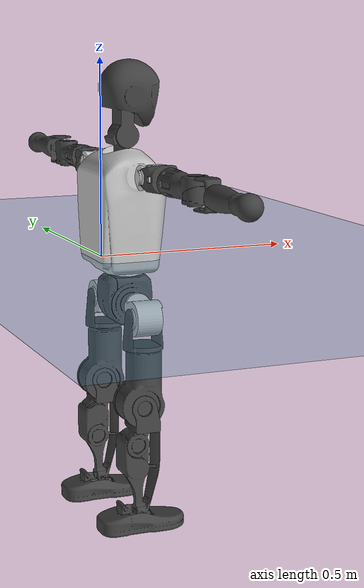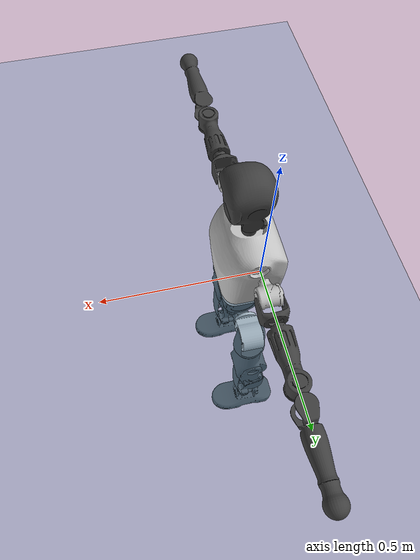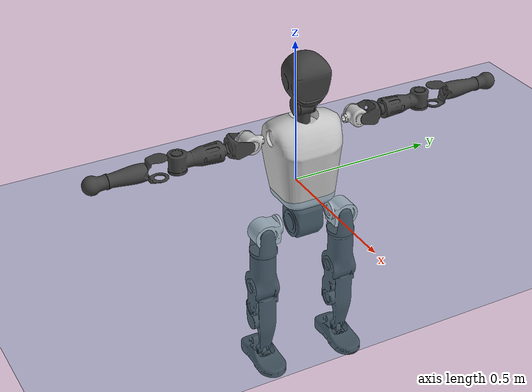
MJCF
<mujoco model="T1">
  <compiler angle="radian" assetdir="assets" balanceinertia="true" inertiafromgeom="false"/>

  <option timestep="0.005" density="1.2" viscosity="2e-05"/>

  <size nkey="1"/>

  <visual>
    <quality shadowsize="8192"/>
    <map shadowclip="0.5"/>
  </visual>

  <default>
    <default class="/">
      <joint armature="0.01" damping="0.01" frictionloss="0.1"/>
      <geom contype="0" conaffinity="0" group="1" solref="-1000 -80"/>
      <site size="0.01 0.005 0.005" group="5"/>
      <general forcelimited="true" biastype="affine" gainprm="25" biasprm="0 -25 -0.6"/>
      <default class="t1">
        <geom rgba="0.25 0.25 0.25 1"/>
        <default class="visual">
          <geom type="mesh" group="2"/>
        </default>
        <default class="collision">
          <geom group="3"/>
        </default>
        <default class="foot">
          <geom size="0.1115 0.05 0.015" type="box" condim="6" group="4" priority="1" solimp="0.015 1 0.015"/>
        </default>
        <default class="reward_collision_sphere">
          <geom group="5" rgba="1 0 0 1"/>
        </default>
      </default>
    </default>
  </default>

  <asset>
    <texture type="skybox" colorspace="auto" name="//unnamed_texture_0" builtin="gradient" rgb1="0.95 0.95 0.95" rgb2="0.95 0.95 0.95" width="100" height="600"/>
    <texture type="2d" colorspace="auto" name="texplane" builtin="checker" rgb1="0.345 0.575 0.748" rgb2="0.345 0.575 0.748" markrgb="1 1 1" width="512" height="512"/>
    <material name="MatPlane" class="/" texture="texplane" texuniform="true" texrepeat="2 2" specular="0.9"/>
    <mesh name="Trunk" class="/" file="Trunk.stl"/>
    <mesh name="H1" class="/" file="H1.stl"/>
    <mesh name="H2" class="/" file="H2.stl"/>
    <mesh name="AL1" class="/" file="AL1.stl"/>
    <mesh name="AL2" class="/" file="AL2.stl"/>
    <mesh name="AL3" class="/" file="AL3.stl"/>
    <mesh name="left_hand_link" class="/" file="left_hand_link.stl"/>
    <mesh name="AR1" class="/" file="AR1.stl"/>
    <mesh name="AR2" class="/" file="AR2.stl"/>
    <mesh name="AR3" class="/" file="AR3.stl"/>
    <mesh name="right_hand_link" class="/" file="right_hand_link.stl"/>
    <mesh name="Waist" class="/" file="Waist.stl"/>
    <mesh name="Hip_Pitch_Left" class="/" file="Hip_Pitch_Left.stl"/>
    <mesh name="Hip_Roll_Left" class="/" file="Hip_Roll_Left.stl"/>
    <mesh name="Hip_Yaw_Left" class="/" file="Hip_Yaw_Left.stl"/>
    <mesh name="Shank_Left" class="/" file="Shank_Left.stl"/>
    <mesh name="Ankle_Cross_Left" class="/" file="Ankle_Cross_Left.stl"/>
    <mesh name="left_foot_link" class="/" file="left_foot_link.stl"/>
    <mesh name="Hip_Pitch_Right" class="/" file="Hip_Pitch_Right.stl"/>
    <mesh name="Hip_Roll_Right" class="/" file="Hip_Roll_Right.stl"/>
    <mesh name="Hip_Yaw_Right" class="/" file="Hip_Yaw_Right.stl"/>
    <mesh name="Shank_Right" class="/" file="Shank_Right.stl"/>
    <mesh name="Ankle_Cross_Right" class="/" file="Ankle_Cross_Right.stl"/>
    <mesh name="right_foot_link" class="/" file="right_foot_link.stl"/>
  </asset>

  <worldbody>
    <geom name="floor" class="/" size="100 100 0.125" type="plane" group="0" material="MatPlane"/>
    <light name="toplight_shadow" class="/" pos="0 0 5" dir="0.0990148 0.0990148 -0.990148" type="directional" ambient="0.04 0.04 0.04" diffuse="0.55 0.55 0.55" specular="0.12 0.12 0.12"/>
    <light name="toplight_fill" class="/" pos="0 0 5" dir="0.0990148 0.0990148 -0.990148" type="directional" castshadow="false" ambient="0.04 0.04 0.04" diffuse="0.3 0.3 0.3" specular="0.08 0.08 0.08"/>
    <body name="trunk" childclass="t1" pos="0.000391792 -0.00256232 -0.00262824" quat="1 0.000104824 0.000299429 -8.37478e-05">
      <inertial pos="0.0537573 -0.00350101 0.105009" quat="0.999961 0.000610157 -0.00765622 -0.00430879" mass="16.2074" diaginertia="0.073147 0.412875 0.0565209"/>
      <joint name="//unnamed_joint_0" type="free" armature="0" damping="0" frictionloss="0"/>
      <geom name="//unnamed_geom_1" class="visual" rgba="0.76 0.76 0.76 1" mesh="Trunk"/>
      <geom name="//unnamed_geom_2" class="collision" size="0.0845676 0.112757 0.169135" pos="0.0577049 0 0.121832" type="box"/>
      <geom name="//unnamed_geom_3" class="reward_collision_sphere" size="0.12967" pos="0.0577049 0 0.101527"/>
      <geom name="//unnamed_geom_4" class="reward_collision_sphere" size="0.0169135" pos="0.0577049 0.119483 0"/>
      <geom name="//unnamed_geom_5" class="reward_collision_sphere" size="0.0169135" pos="0.0577049 -0.119483 0"/>
      <geom name="//unnamed_geom_6" class="reward_collision_sphere" size="0.0169135" pos="0.0577049 0.150408 0.182749"/>
      <geom name="//unnamed_geom_7" class="reward_collision_sphere" size="0.0169135" pos="0.0577049 -0.150408 0.182749"/>
      <site name="imu" pos="-0.00790377 -0.0106227 0.0129153" size="0.0112757"/>
      <camera name="track" pos="0 -2.81137 0" quat="0.707107 0.707107 0 0" mode="trackcom"/>
      <camera name="ego_camera" pos="0.117333 0 0.426414" quat="-0.5 -0.5 0.5 0.5"/>
      <body name="H1" pos="0.0568608 0.0010052 0.245074" quat="1 -8.23139e-05 -0.000112973 0.000112309">
        <inertial pos="-0.00065111 -0.00559436 0.0561841" quat="0.759927 -0.0142229 0.00475636 0.649835" mass="0.635514" diaginertia="0.000204854 0.00121663 0.000159239"/>
        <joint name="AAHead_yaw" pos="0 0 0" axis="0.0113255 0.00287917 0.999932" range="-1.57337 1.60866" armature="0.0111108" damping="0.0123311" frictionloss="0.135437"/>
        <geom name="//unnamed_geom_8" class="visual" mesh="H1"/>
        <body name="H2" pos="0.00164986 -0.00271913 0.0633898" quat="1 -1.34281e-05 2.84771e-05 2.54081e-05">
          <inertial pos="0.0040683 0.0038186 0.0975379" quat="0.987287 0.110375 -0.0725724 -0.0884059" mass="0.903909" diaginertia="0.00167357 0.0105901 0.00185857"/>
          <joint name="Head_pitch" pos="0 0 0" axis="0.0027117 -0.999936 0.0110179" range="-1.22084 0.354311" armature="0.0117607" damping="0.00769395" frictionloss="0.107192"/>
          <geom name="//unnamed_geom_9" class="visual" mesh="H2"/>
          <geom name="//unnamed_geom_10" class="collision" size="0.0902054" pos="0.00961749 0 0.11168"/>
          <geom name="//unnamed_geom_11" class="reward_collision_sphere" size="0.101481" pos="0.019235 0 0.101527"/>
        </body>
      </body>
      <body name="AL1" pos="0.0549606 0.150376 0.220688" quat="1 -0.000785747 7.8336e-05 -0.000161432">
        <inertial pos="-0.00104083 0.0609086 -0.00255888" quat="0.510751 0.487117 -0.507938 0.493811" mass="0.757225" diaginertia="0.00115325 0.00686733 0.000315665"/>
        <joint name="Left_Shoulder_Pitch" pos="0 0 0" axis="-0.00144815 0.999998 -0.00108572" range="-3.25425 1.20191" armature="0.0111468" damping="0" frictionloss="0.110204"/>
        <geom name="//unnamed_geom_12" class="visual" rgba="0.76 0.76 0.76 1" mesh="AL1"/>
        <body name="AL2" pos="0.00147835 0.0653316 -0.00086285" quat="1 4.48418e-05 0.000201429 0.00027584">
          <inertial pos="0.0016747 0.0500556 0.00160528" quat="0.484139 0.504374 -0.482717 0.527448" mass="0.237289" diaginertia="0.000329475 0.00191155 0.000187227"/>
          <joint name="Left_Shoulder_Roll" pos="0 0 0" axis="-0.999993 0.00068725 0.00372934" stiffness="0.000386668" range="-1.56595 1.7414" armature="0.012948" damping="0.0107693" frictionloss="0.0995499"/>
          <geom name="//unnamed_geom_13" class="visual" mesh="AL2"/>
          <body name="AL3" pos="-0.000185823 0.0813166 0.0020696" quat="1 -2.6017e-05 0.000114994 4.72651e-05">
            <inertial pos="0.00243423 0.1202 -0.00151931" quat="0.703972 0.710222 0.000999042 -0.00267399" mass="1.45197" diaginertia="0.0101536 0.0715401 0.000685884"/>
            <joint name="Left_Elbow_Pitch" pos="0 0 0" axis="0.00828134 -0.999948 -0.00594076" stiffness="0.00698784" range="-2.23604 2.22475" armature="0.010007" damping="0.0142834" frictionloss="0.1168"/>
            <geom name="//unnamed_geom_14" class="visual" mesh="AL3"/>
            <geom name="//unnamed_geom_15" class="collision" size="0.033827 0.0845676" pos="0 0.0702842 0" quat="0.707105 0.707108 0 0" type="cylinder"/>
            <geom name="//unnamed_geom_16" class="reward_collision_sphere" size="0.0405924"/>
            <body name="left_hand_link" pos="0.0023034 0.204739 0.00296498" quat="1 0.000187355 0.000498553 0.000832634">
              <inertial pos="0.000194357 0.152537 0.0011432" quat="0.708158 0.705927 -0.00828612 -0.0105134" mass="0.479234" diaginertia="0.00674626 0.0447592 0.000226419"/>
              <joint name="Left_Elbow_Yaw" pos="0 0 0" axis="-0.0084261 0.00623697 0.999945" range="-2.39921 -0.000460212" armature="0.0113677" damping="0.0269467" frictionloss="0.110958"/>
              <geom name="//unnamed_geom_17" class="visual" mesh="left_hand_link"/>
              <geom name="//unnamed_geom_18" class="collision" size="0.033827 0.0986622" pos="0 0.182739 0" quat="0.707105 0.707108 0 0" type="cylinder"/>
              <geom name="//unnamed_geom_19" class="reward_collision_sphere" size="0.0563784"/>
              <geom name="//unnamed_geom_20" class="reward_collision_sphere" size="0.0394649" pos="0 0.154625 0"/>
              <geom name="//unnamed_geom_21" class="reward_collision_sphere" size="0.0394649" pos="0 0.302222 0"/>
            </body>
          </body>
        </body>
      </body>
      <body name="AR1" pos="0.0582561 -0.148445 0.223731" quat="1 -0.000405433 0.00027701 -0.000145127">
        <inertial pos="-0.00212097 -0.0639272 0.00228426" quat="0.502051 0.491189 -0.501265 0.505383" mass="0.773023" diaginertia="0.00115485 0.00750918 0.00032793"/>
        <joint name="Right_Shoulder_Pitch" pos="0 0 0" axis="-0.00620394 -0.99998 -0.000779697" stiffness="2.3484e-05" range="-1.21841 3.32893" armature="0.0119649" damping="0.0170687" frictionloss="0.128609"/>
        <geom name="//unnamed_geom_22" class="visual" rgba="0.76 0.76 0.76 1" mesh="AR1"/>
        <body name="AR2" pos="0.00287638 -0.0651809 0.00274384" quat="1 -0.000391173 0.000639256 -7.5095e-05">
          <inertial pos="0.0020421 -0.0497317 0.00259779" quat="0.511042 0.492327 -0.502792 0.49361" mass="0.23917" diaginertia="0.000346857 0.00199777 0.000199444"/>
          <joint name="Right_Shoulder_Roll" pos="0 0 0" axis="-0.99999 -0.00358252 -0.00251749" range="-1.72834 1.5859" armature="0.0111729" damping="0.0247551" frictionloss="0.127338"/>
          <geom name="//unnamed_geom_23" class="visual" mesh="AR2"/>
          <body name="AR3" pos="0.00306604 -0.0828379 -0.00257475" quat="1 0.000408313 0.000516451 0.000255031">
            <inertial pos="0.00248935 -0.120933 -0.00238014" quat="0.706745 0.707451 0.00484571 0.000769973" mass="1.49704" diaginertia="0.0107547 0.0743616 0.000659873"/>
            <joint name="Right_Elbow_Pitch" pos="0 0 0" axis="0.0112317 0.999917 -0.00626994" range="-2.30406 2.31971" armature="0.0112178" damping="0.0117125" frictionloss="0.125413"/>
            <geom name="//unnamed_geom_24" class="visual" mesh="AR3"/>
            <geom name="//unnamed_geom_25" class="collision" size="0.033827 0.0845676" pos="0 -0.0702842 0" quat="0.707105 0.707108 0 0" type="cylinder"/>
            <geom name="//unnamed_geom_26" class="reward_collision_sphere" size="0.0405924"/>
            <body name="right_hand_link" pos="0.000668512 -0.206964 -0.00336108" quat="1 -0.000379417 0.000101134 0.000275357">
              <inertial pos="-0.000228172 -0.153398 0.00308027" quat="0.706941 0.707175 -0.0115259 -0.00225215" mass="0.463197" diaginertia="0.00705561 0.0469365 0.000230423"/>
              <joint name="Right_Elbow_Yaw" pos="0 0 0" axis="-0.000240641 -5.87767e-05 1" range="0.0167043 2.45616" armature="0.0108832" damping="0.0152837" frictionloss="0.0989467"/>
              <geom name="//unnamed_geom_27" class="visual" mesh="right_hand_link"/>
              <geom name="//unnamed_geom_28" class="collision" size="0.033827 0.0986622" pos="0 -0.182739 0" quat="0.707105 0.707108 0 0" type="cylinder"/>
              <geom name="//unnamed_geom_29" class="reward_collision_sphere" size="0.0563784"/>
              <geom name="//unnamed_geom_30" class="reward_collision_sphere" size="0.0394649" pos="0 -0.154625 0"/>
              <geom name="//unnamed_geom_31" class="reward_collision_sphere" size="0.0394649" pos="0 -0.302222 0"/>
            </body>
          </body>
        </body>
      </body>
      <body name="Waist" pos="0.0592836 -0.00368452 -0.113675" quat="0.999999 -0.000197699 0.000838116 -0.000912874">
        <inertial pos="0.00643346 0.00215452 0.0098122" quat="0.984396 0.00291598 -0.175941 -0.00127114" mass="3.62707" diaginertia="0.0045192 0.0285417 0.00518332"/>
        <joint name="Waist" pos="0 0 0" axis="-0.0083363 -0.0108944 0.999906" range="-1.60304 1.55207" armature="0.0115712" damping="0.0195437" frictionloss="0.11505"/>
        <geom name="//unnamed_geom_32" class="visual" mesh="Waist"/>
        <body name="Hip_Pitch_Left" pos="0.00241976 0.150273 0.00217913" quat="0.999999 3.89205e-05 -0.000213461 -0.00129843">
          <inertial pos="5.57133e-05 -0.0107212 -0.0178311" quat="0.976432 0.215569 0.00966138 0.00416324" mass="1.40204" diaginertia="0.00146878 0.00799752 0.0013252"/>
          <joint name="Left_Hip_Pitch" pos="0 0 0" axis="-0.000418984 1 -0.000799622" stiffness="0.00632746" range="-1.81239 1.52564" armature="0.00974574" damping="0.0202478" frictionloss="0.127357"/>
          <geom name="//unnamed_geom_33" class="visual" rgba="0.76 0.76 0.76 1" mesh="Hip_Pitch_Left"/>
          <body name="Hip_Roll_Left" pos="-0.00238416 -0.00220585 -0.0209863" quat="1 0.00012839 0.000170214 -5.6062e-05">
            <inertial pos="-0.000921078 -0.000180468 -0.0523307" quat="0.715435 -0.00633929 0.00270041 0.698645" mass="0.589552" diaginertia="0.00149186 0.00879597 0.00057033"/>
            <joint name="Left_Hip_Roll" pos="0 0 0" axis="-0.999983 0.00580604 -0.000292855" range="-1.57492 0.247145" armature="0.0101467" damping="0" frictionloss="0.103729"/>
            <geom name="//unnamed_geom_34" class="visual" mesh="Hip_Roll_Left"/>
            <geom name="//unnamed_geom_35" class="reward_collision_sphere" size="0.0620162"/>
            <body name="Hip_Yaw_Left" pos="-0.000773605 0.000676431 -0.087851" quat="0.999999 0.000625286 -0.000331253 -0.000725854">
              <inertial pos="-0.00573564 0.00261039 -0.0929054" quat="0.700968 -0.0301782 -0.0292214 0.711955" mass="3.03077" diaginertia="0.021177 0.144534 0.00280048"/>
              <joint name="Left_Hip_Yaw" pos="0 0 0" axis="0.00599277 -0.00388535 -0.999974" range="-1.03763 0.97157" armature="0.0108102" damping="0" frictionloss="0.116832"/>
              <geom name="//unnamed_geom_36" class="visual" mesh="Hip_Yaw_Left"/>
              <geom name="//unnamed_geom_37" class="collision" size="0.0563784 0.0902054" type="cylinder"/>
              <body name="Shank_Left" pos="-0.0167893 0.000770022 -0.130608" quat="1 0.000351081 0.00041508 -0.000236989">
                <inertial pos="-0.00803311 -0.000678144 -0.127863" quat="0.997569 0.00147898 -0.0237561 0.0654924" mass="2.61168" diaginertia="0.0285383 0.186651 0.00207672"/>
                <joint name="Left_Knee_Pitch" pos="0 0 0" axis="-0.000912173 0.999864 0.0164678" stiffness="0.00354547" range="0.0392135 2.29425" armature="0.0114086" damping="0.00979148" frictionloss="0.0988732"/>
                <geom name="//unnamed_geom_38" class="visual" mesh="Shank_Left"/>
                <geom name="//unnamed_geom_39" class="collision" size="0.0563784 0.0845676" pos="0 0 -0.121832" type="cylinder"/>
                <geom name="//unnamed_geom_40" class="reward_collision_sphere" size="0.0732919"/>
                <body name="Ankle_Cross_Left" pos="0.00297217 0.00123258 -0.286426" quat="1 8.77756e-05 0.000258634 0.000747143">
                  <inertial pos="-0.00569879 0.000249303 -0.00641352" quat="0.443077 0.550996 0.551089 0.443156" mass="0.102587" diaginertia="2.32104e-05 0.000136791 1.21e-05"/>
                  <joint name="Left_Ankle_Pitch" pos="0 0 0" axis="0.000323978 1 -0.000421766" stiffness="0.000198953" range="-0.914194 0.390906" armature="0.0103087" damping="0" frictionloss="0.12757"/>
                  <geom name="//unnamed_geom_41" class="visual" mesh="Ankle_Cross_Left"/>
                  <body name="left_foot_link" pos="-0.00371308 -0.000553503 -0.0155036" quat="0.999999 -0.000272539 0.000139926 -0.000973926">
                    <inertial pos="-0.000205578 -3.23982e-05 -0.00852625" quat="0.00419018 0.618994 0.0123518 0.785288" mass="1.00309" diaginertia="0.00230558 0.0135545 0.00228149"/>
                    <joint name="Left_Ankle_Roll" pos="0 0 0" axis="-0.999957 -0.00898339 -0.00216909" range="-0.424207 0.435991" armature="0.0113451" damping="0" frictionloss="0.112503"/>
                    <geom name="//unnamed_geom_42" class="visual" mesh="left_foot_link"/>
                    <geom name="left_foot" class="foot" size="0.12239 0.0460269 0.0172033" pos="0.00961749 0 -0.0152291"/>
                    <geom name="//unnamed_geom_44" class="reward_collision_sphere" size="0.0586335" pos="0.00961749 0 -0.0152291"/>
                    <geom name="//unnamed_geom_45" class="reward_collision_sphere" size="0.033827" pos="0.0913661 -0.0323307 -0.0152291"/>
                    <geom name="//unnamed_geom_46" class="reward_collision_sphere" size="0.033827" pos="-0.0673224 -0.0323307 -0.0152291"/>
                    <site name="left_foot" class="foot" pos="0.00961749 0 -0.0152291" size="0.0112757"/>
                  </body>
                </body>
              </body>
            </body>
          </body>
        </body>
        <body name="Hip_Pitch_Right" pos="-0.00142737 -0.146361 0.00261047" quat="1 0.000966589 -0.000145288 -0.000102301">
          <inertial pos="0.000928827 0.00793517 -0.0196175" quat="0.971524 -0.236709 0.00948941 0.00438844" mass="1.47625" diaginertia="0.00149704 0.0078254 0.00142455"/>
          <joint name="Right_Hip_Pitch" pos="0 0 0" axis="-0.00934229 -0.999954 -0.00198076" stiffness="0.00942763" range="-1.57944 1.86607" armature="0.0108452" damping="0.0120132" frictionloss="0.110764"/>
          <geom name="//unnamed_geom_47" class="visual" rgba="0.76 0.76 0.76 1" mesh="Hip_Pitch_Right"/>
          <body name="Hip_Roll_Right" pos="-0.00288265 -0.000747593 -0.0190896" quat="0.999999 -0.000857612 -0.000314022 0.000470407">
            <inertial pos="0.000415621 0.0025992 -0.0534598" quat="0.716482 -0.0110465 -0.00953048 0.697453" mass="0.53801" diaginertia="0.00142758 0.00826408 0.000562041"/>
            <joint name="Right_Hip_Roll" pos="0 0 0" axis="-0.999992 -0.00376683 -0.00124797" stiffness="0.00132458" range="-0.27686 1.51396" armature="0.011337" damping="0.00848888" frictionloss="0.123032"/>
            <geom name="//unnamed_geom_48" class="visual" mesh="Hip_Roll_Right"/>
            <geom name="//unnamed_geom_49" class="reward_collision_sphere" size="0.0620162"/>
            <body name="Hip_Yaw_Right" pos="-0.00148995 -0.00263178 -0.0809514" quat="1 -6.71263e-05 -4.8002e-05 0.000743186">
              <inertial pos="-0.00794487 -0.00185884 -0.0882171" quat="0.719506 -0.0361466 -0.0235445 0.693145" mass="3.30647" diaginertia="0.0218809 0.146176 0.00283933"/>
              <joint name="Right_Hip_Yaw" pos="0 0 0" axis="-0.0018329 -0.0202951 -0.999792" range="-0.972152 1.05056" armature="0.0105622" damping="0.0274675" frictionloss="0.111231"/>
              <geom name="//unnamed_geom_50" class="visual" mesh="Hip_Yaw_Right"/>
              <geom name="//unnamed_geom_51" class="collision" size="0.0563784 0.0902054" type="cylinder"/>
              <body name="Shank_Right" pos="-0.0131823 -0.000949428 -0.137381" quat="1 -6.01459e-05 0.000709062 -0.000158119">
                <inertial pos="-0.0059258 -0.00158567 -0.124247" quat="0.999294 -0.0042215 -0.0194001 -0.0318942" mass="2.44743" diaginertia="0.0266911 0.179209 0.00202597"/>
                <joint name="Right_Knee_Pitch" pos="0 0 0" axis="-0.00176333 -0.999997 0.001689" stiffness="0.000745953" range="-2.38264 0.042157" armature="0.0096749" damping="0.0140478" frictionloss="0.110363"/>
                <geom name="//unnamed_geom_52" class="visual" mesh="Shank_Right"/>
                <geom name="//unnamed_geom_53" class="collision" size="0.0563784 0.0845676" pos="0 0 -0.121832" type="cylinder"/>
                <geom name="//unnamed_geom_54" class="reward_collision_sphere" size="0.0732919"/>
                <body name="Ankle_Cross_Right" pos="-0.0010201 0.00229933 -0.281193" quat="1 -4.63931e-05 -0.000155263 -9.84676e-05">
                  <inertial pos="-0.00276954 -0.000923009 -0.00832322" quat="0.437278 0.561433 0.547948 0.439698" mass="0.109992" diaginertia="2.35275e-05 0.00013914 1.28474e-05"/>
                  <joint name="Right_Ankle_Pitch" pos="0 0 0" axis="0.00454135 -0.999964 -0.00721418" stiffness="0.00765567" range="-0.327579 0.896639" armature="0.0112468" damping="0.0164642" frictionloss="0.0990506"/>
                  <geom name="//unnamed_geom_55" class="visual" mesh="Ankle_Cross_Right"/>
                  <body name="right_foot_link" pos="-0.0021087 -0.000297296 -0.0122021" quat="1 -0.000127352 0.000127435 0.000138076">
                    <inertial pos="0.00303866 -0.00241846 -0.00920742" quat="0.00045633 0.621621 -0.00267647 0.783313" mass="0.977667" diaginertia="0.00222347 0.0130452 0.00236795"/>
                    <joint name="Right_Ankle_Roll" pos="0 0 0" axis="-0.999995 0.00221947 -0.00221068" range="-0.386574 0.433902" armature="0.0119469" damping="0.0190891" frictionloss="0.122597"/>
                    <geom name="//unnamed_geom_56" class="visual" mesh="right_foot_link"/>
                    <geom name="right_foot" class="foot" size="0.0986408 0.048908 0.0153486" pos="0.00961749 0 -0.0152291"/>
                    <geom name="//unnamed_geom_58" class="reward_collision_sphere" size="0.0451027"/>
                    <geom name="//unnamed_geom_59" class="reward_collision_sphere" size="0.033827" pos="0.00961749 0 -0.0152291"/>
                    <geom name="//unnamed_geom_60" class="reward_collision_sphere" size="0.033827" pos="0.0913661 0.0323307 -0.0152291"/>
                    <geom name="//unnamed_geom_61" class="reward_collision_sphere" size="0.033827" pos="-0.0673224 0.0323307 -0.0152291"/>
                    <site name="right_foot" class="foot" pos="0.00961749 0 -0.0152291" size="0.0112757"/>
                  </body>
                </body>
              </body>
            </body>
          </body>
        </body>
      </body>
    </body>
  </worldbody>

  <contact>
    <pair class="/" geom1="floor" geom2="left_foot" name="//unnamed_contact_0"/>
    <pair class="/" geom1="floor" geom2="right_foot" name="//unnamed_contact_1"/>
  </contact>

  <actuator>
    <general name="AAHead_yaw" class="/" joint="AAHead_yaw" forcerange="-8.69531 8.69531" gainprm="27.9717" biasprm="0 -27.9717 -0.622216"/>
    <general name="Head_pitch" class="/" joint="Head_pitch" forcerange="-7.98277 7.98277" gainprm="27.9717" biasprm="0 -27.9717 -0.622216"/>
    <general name="Left_Shoulder_Pitch" class="/" joint="Left_Shoulder_Pitch" forcerange="-19.0138 19.0138" gainprm="27.9717" biasprm="0 -27.9717 -0.622216"/>
    <general name="Left_Shoulder_Roll" class="/" joint="Left_Shoulder_Roll" forcerange="-18.116 18.116" gainprm="27.9717" biasprm="0 -27.9717 -0.622216"/>
    <general name="Left_Elbow_Pitch" class="/" joint="Left_Elbow_Pitch" forcerange="-20.5405 20.5405" gainprm="27.9717" biasprm="0 -27.9717 -0.622216"/>
    <general name="Left_Elbow_Yaw" class="/" joint="Left_Elbow_Yaw" forcerange="-18.4293 18.4293" gainprm="27.9717" biasprm="0 -27.9717 -0.622216"/>
    <general name="Right_Shoulder_Pitch" class="/" joint="Right_Shoulder_Pitch" forcerange="-22.6207 22.6207" gainprm="27.9717" biasprm="0 -27.9717 -0.622216"/>
    <general name="Right_Shoulder_Roll" class="/" joint="Right_Shoulder_Roll" forcerange="-18.9869 18.9869" gainprm="27.9717" biasprm="0 -27.9717 -0.622216"/>
    <general name="Right_Elbow_Pitch" class="/" joint="Right_Elbow_Pitch" forcerange="-18.5749 18.5749" gainprm="27.9717" biasprm="0 -27.9717 -0.622216"/>
    <general name="Right_Elbow_Yaw" class="/" joint="Right_Elbow_Yaw" forcerange="-22.2155 22.2155" gainprm="27.9717" biasprm="0 -27.9717 -0.622216"/>
    <general name="Waist" class="/" joint="Waist" forcerange="-37.4443 37.4443" gainprm="27.9717" biasprm="0 -27.9717 -0.622216"/>
    <general name="Left_Hip_Pitch" class="/" joint="Left_Hip_Pitch" forcerange="-49.6073 49.6073" gainprm="27.9717" biasprm="0 -27.9717 -0.622216"/>
    <general name="Left_Hip_Roll" class="/" joint="Left_Hip_Roll" forcerange="-33.7201 33.7201" gainprm="27.9717" biasprm="0 -27.9717 -0.622216"/>
    <general name="Left_Hip_Yaw" class="/" joint="Left_Hip_Yaw" forcerange="-34.6616 34.6616" gainprm="27.9717" biasprm="0 -27.9717 -0.622216"/>
    <general name="Left_Knee_Pitch" class="/" joint="Left_Knee_Pitch" forcerange="-71.3705 71.3705" gainprm="27.9717" biasprm="0 -27.9717 -0.622216"/>
    <general name="Left_Ankle_Pitch" class="/" joint="Left_Ankle_Pitch" forcerange="-23.3553 23.3553" gainprm="27.9717" biasprm="0 -27.9717 -0.622216"/>
    <general name="Left_Ankle_Roll" class="/" joint="Left_Ankle_Roll" forcerange="-16.0568 16.0568" gainprm="27.9717" biasprm="0 -27.9717 -0.622216"/>
    <general name="Right_Hip_Pitch" class="/" joint="Right_Hip_Pitch" forcerange="-50.9051 50.9051" gainprm="27.9717" biasprm="0 -27.9717 -0.622216"/>
    <general name="Right_Hip_Roll" class="/" joint="Right_Hip_Roll" forcerange="-32.6613 32.6613" gainprm="27.9717" biasprm="0 -27.9717 -0.622216"/>
    <general name="Right_Hip_Yaw" class="/" joint="Right_Hip_Yaw" forcerange="-30.4093 30.4093" gainprm="27.9717" biasprm="0 -27.9717 -0.622216"/>
    <general name="Right_Knee_Pitch" class="/" joint="Right_Knee_Pitch" forcerange="-67.1185 67.1185" gainprm="27.9717" biasprm="0 -27.9717 -0.622216"/>
    <general name="Right_Ankle_Pitch" class="/" joint="Right_Ankle_Pitch" forcerange="-20.6594 20.6594" gainprm="27.9717" biasprm="0 -27.9717 -0.622216"/>
    <general name="Right_Ankle_Roll" class="/" joint="Right_Ankle_Roll" forcerange="-16.0281 16.0281" gainprm="27.9717" biasprm="0 -27.9717 -0.622216"/>
  </actuator>

  <sensor>
    <gyro site="imu" name="imu_angular_velocity"/>
    <velocimeter site="imu" name="imu_linear_velocity"/>
    <framelinvel objtype="site" objname="left_foot" name="left_foot_global_linear_velocity"/>
    <framelinvel objtype="site" objname="right_foot" name="right_foot_global_linear_velocity"/>
  </sensor>

  <keyframe>
    <key name="home" qpos="0 0 0.6385 1 0 0 0 0 0 0 1.4 0 -0.4 0 -1.4 0 0.4 0 -0.4 0 0 0.8 -0.4 0 0.4 0 0 -0.8 0.4 0"/>
  </keyframe>
</mujoco>
